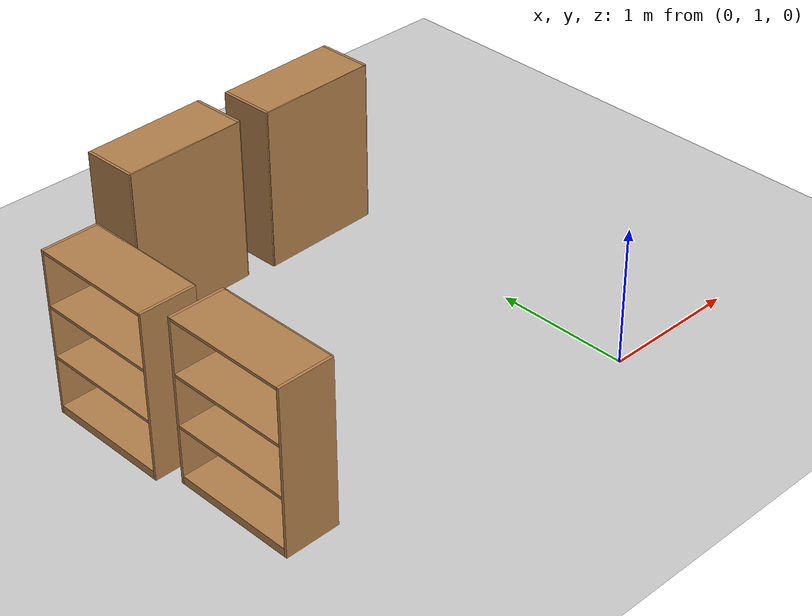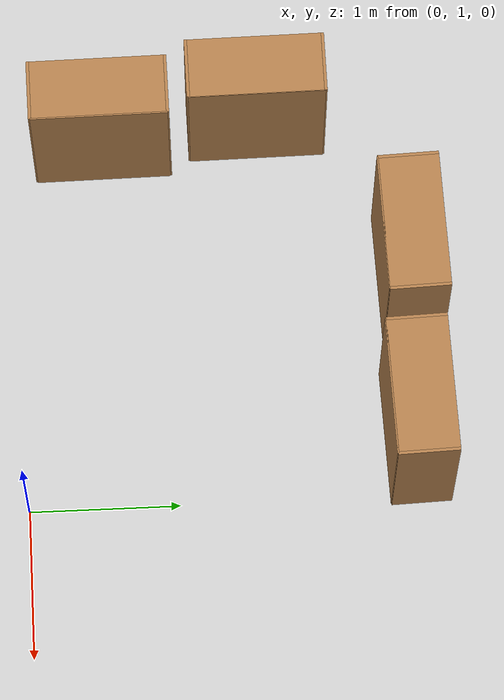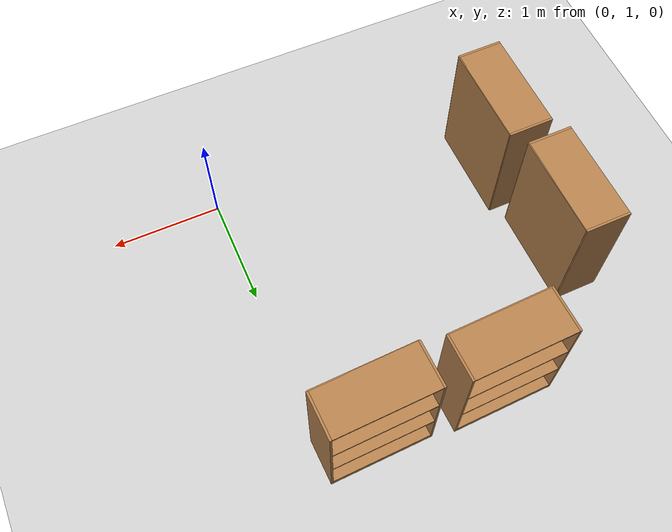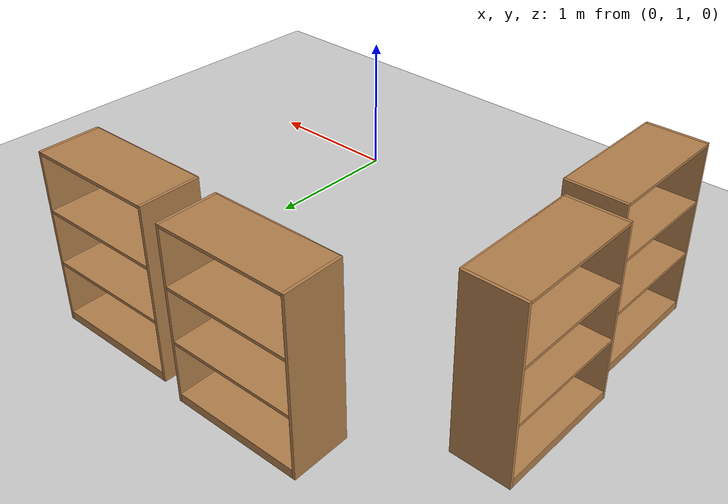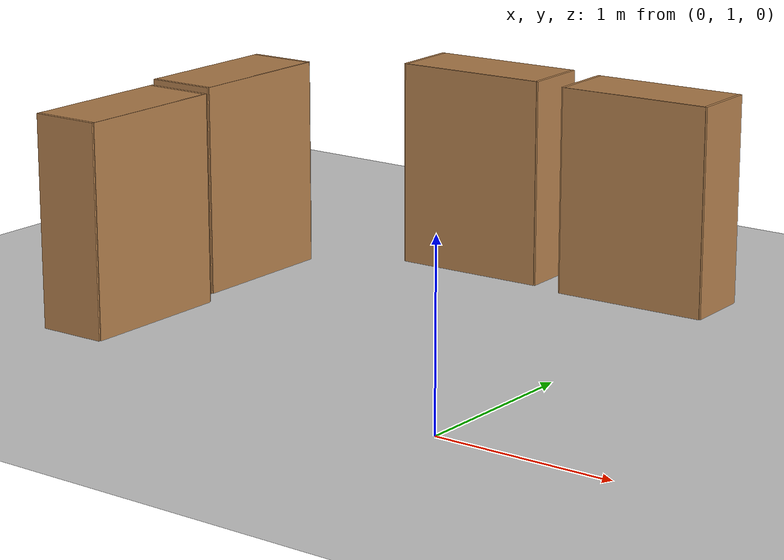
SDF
<sdf version="1.6">
 <world name="default">
  <model name="ground_plane">
   <static>1</static>
   <link name="link">
    <collision name="collision">
     <geometry><plane><normal>0 0 1</normal><size>100 100</size></plane></geometry>
     <surface>
      <contact><collide_bitmask>65535</collide_bitmask></contact>
      <friction><ode><mu>100</mu><mu2>50</mu2></ode></friction>
     </surface>
    </collision>
    <visual name="visual">
     <cast_shadows>0</cast_shadows>
     <geometry><plane><normal>0 0 1</normal><size>100 100</size></plane></geometry>
     <material>
      <script><uri>file://media/materials/scripts/gazebo.material</uri><name>Gazebo/Grey</name></script>
     </material>
    </visual>
   </link>
  </model>
  <model name="bookshelf_clone_2_clone_clone_0_clone_3_clone">
   <static>1</static>
   <link name="link">
    <inertial><mass>1</mass></inertial>
    <collision name="back">
     <pose>0 0.005 0.6 0 -0 0</pose>
     <geometry><box><size>0.9 0.01 1.2</size></box></geometry>
    </collision>
    <visual name="visual1">
     <pose>0 0.005 0.6 0 -0 0</pose>
     <geometry><box><size>0.9 0.01 1.2</size></box></geometry>
     <material>
      <script><uri>file://media/materials/scripts/gazebo.material</uri><name>Gazebo/Wood</name></script>
     </material>
    </visual>
    <collision name="left_side">
     <pose>0.45 -0.195 0.6 0 -0 0</pose>
     <geometry><box><size>0.02 0.4 1.2</size></box></geometry>
    </collision>
    <visual name="visual2">
     <pose>0.45 -0.195 0.6 0 -0 0</pose>
     <geometry><box><size>0.02 0.4 1.2</size></box></geometry>
     <material>
      <script><uri>file://media/materials/scripts/gazebo.material</uri><name>Gazebo/Wood</name></script>
     </material>
    </visual>
    <collision name="right_side">
     <pose>-0.45 -0.195 0.6 0 -0 0</pose>
     <geometry><box><size>0.02 0.4 1.2</size></box></geometry>
    </collision>
    <visual name="visual3">
     <pose>-0.45 -0.195 0.6 0 -0 0</pose>
     <geometry><box><size>0.02 0.4 1.2</size></box></geometry>
     <material>
      <script><uri>file://media/materials/scripts/gazebo.material</uri><name>Gazebo/Wood</name></script>
     </material>
    </visual>
    <collision name="bottom">
     <pose>0 -0.195 0.03 0 -0 0</pose>
     <geometry><box><size>0.88 0.4 0.06</size></box></geometry>
    </collision>
    <visual name="visual4">
     <pose>0 -0.195 0.03 0 -0 0</pose>
     <geometry><box><size>0.88 0.4 0.06</size></box></geometry>
     <material>
      <script><uri>file://media/materials/scripts/gazebo.material</uri><name>Gazebo/Wood</name></script>
     </material>
    </visual>
    <collision name="top">
     <pose>0 -0.195 1.19 0 -0 0</pose>
     <geometry><box><size>0.88 0.4 0.02</size></box></geometry>
    </collision>
    <visual name="visual5">
     <pose>0 -0.195 1.19 0 -0 0</pose>
     <geometry><box><size>0.88 0.4 0.02</size></box></geometry>
     <material>
      <script><uri>file://media/materials/scripts/gazebo.material</uri><name>Gazebo/Wood</name></script>
     </material>
    </visual>
    <collision name="low_shelf">
     <pose>0 -0.195 0.43 0 -0 0</pose>
     <geometry><box><size>0.88 0.4 0.02</size></box></geometry>
    </collision>
    <visual name="visual6">
     <pose>0 -0.195 0.43 0 -0 0</pose>
     <geometry><box><size>0.88 0.4 0.02</size></box></geometry>
     <material>
      <script><uri>file://media/materials/scripts/gazebo.material</uri><name>Gazebo/Wood</name></script>
     </material>
    </visual>
    <collision name="high_shelf">
     <pose>0 -0.195 0.8 0 -0 0</pose>
     <geometry><box><size>0.88 0.4 0.02</size></box></geometry>
    </collision>
    <visual name="visual7">
     <pose>0 -0.195 0.8 0 -0 0</pose>
     <geometry><box><size>0.88 0.4 0.02</size></box></geometry>
     <material>
      <script><uri>file://media/materials/scripts/gazebo.material</uri><name>Gazebo/Wood</name></script>
     </material>
    </visual>
   </link>
   <pose>-0.402698 3.38465 0 0 0 -3.10717</pose>
  </model>
  <model name="bookshelf_clone_2_clone_clone_0_clone_3_clone_0">
   <static>1</static>
   <link name="link">
    <inertial><mass>1</mass></inertial>
    <collision name="back">
     <pose>0 0.005 0.6 0 -0 0</pose>
     <geometry><box><size>0.9 0.01 1.2</size></box></geometry>
    </collision>
    <visual name="visual1">
     <pose>0 0.005 0.6 0 -0 0</pose>
     <geometry><box><size>0.9 0.01 1.2</size></box></geometry>
     <material>
      <script><uri>file://media/materials/scripts/gazebo.material</uri><name>Gazebo/Wood</name></script>
     </material>
    </visual>
    <collision name="left_side">
     <pose>0.45 -0.195 0.6 0 -0 0</pose>
     <geometry><box><size>0.02 0.4 1.2</size></box></geometry>
    </collision>
    <visual name="visual2">
     <pose>0.45 -0.195 0.6 0 -0 0</pose>
     <geometry><box><size>0.02 0.4 1.2</size></box></geometry>
     <material>
      <script><uri>file://media/materials/scripts/gazebo.material</uri><name>Gazebo/Wood</name></script>
     </material>
    </visual>
    <collision name="right_side">
     <pose>-0.45 -0.195 0.6 0 -0 0</pose>
     <geometry><box><size>0.02 0.4 1.2</size></box></geometry>
    </collision>
    <visual name="visual3">
     <pose>-0.45 -0.195 0.6 0 -0 0</pose>
     <geometry><box><size>0.02 0.4 1.2</size></box></geometry>
     <material>
      <script><uri>file://media/materials/scripts/gazebo.material</uri><name>Gazebo/Wood</name></script>
     </material>
    </visual>
    <collision name="bottom">
     <pose>0 -0.195 0.03 0 -0 0</pose>
     <geometry><box><size>0.88 0.4 0.06</size></box></geometry>
    </collision>
    <visual name="visual4">
     <pose>0 -0.195 0.03 0 -0 0</pose>
     <geometry><box><size>0.88 0.4 0.06</size></box></geometry>
     <material>
      <script><uri>file://media/materials/scripts/gazebo.material</uri><name>Gazebo/Wood</name></script>
     </material>
    </visual>
    <collision name="top">
     <pose>0 -0.195 1.19 0 -0 0</pose>
     <geometry><box><size>0.88 0.4 0.02</size></box></geometry>
    </collision>
    <visual name="visual5">
     <pose>0 -0.195 1.19 0 -0 0</pose>
     <geometry><box><size>0.88 0.4 0.02</size></box></geometry>
     <material>
      <script><uri>file://media/materials/scripts/gazebo.material</uri><name>Gazebo/Wood</name></script>
     </material>
    </visual>
    <collision name="low_shelf">
     <pose>0 -0.195 0.43 0 -0 0</pose>
     <geometry><box><size>0.88 0.4 0.02</size></box></geometry>
    </collision>
    <visual name="visual6">
     <pose>0 -0.195 0.43 0 -0 0</pose>
     <geometry><box><size>0.88 0.4 0.02</size></box></geometry>
     <material>
      <script><uri>file://media/materials/scripts/gazebo.material</uri><name>Gazebo/Wood</name></script>
     </material>
    </visual>
    <collision name="high_shelf">
     <pose>0 -0.195 0.8 0 -0 0</pose>
     <geometry><box><size>0.88 0.4 0.02</size></box></geometry>
    </collision>
    <visual name="visual7">
     <pose>0 -0.195 0.8 0 -0 0</pose>
     <geometry><box><size>0.88 0.4 0.02</size></box></geometry>
     <material>
      <script><uri>file://media/materials/scripts/gazebo.material</uri><name>Gazebo/Wood</name></script>
     </material>
    </visual>
   </link>
   <pose>-1.5072 3.3937 0 0 0 -3.10717</pose>
  </model>
  <model name="bookshelf_clone_2_clone_clone_0_clone_3_clone_0_clone_1_clone_clone_clone_2">
   <static>1</static>
   <link name="link">
    <inertial><mass>1</mass></inertial>
    <collision name="back">
     <pose>0 0.005 0.6 0 -0 0</pose>
     <geometry><box><size>0.9 0.01 1.2</size></box></geometry>
    </collision>
    <visual name="visual1">
     <pose>0 0.005 0.6 0 -0 0</pose>
     <geometry><box><size>0.9 0.01 1.2</size></box></geometry>
     <material>
      <script><uri>file://media/materials/scripts/gazebo.material</uri><name>Gazebo/Wood</name></script>
     </material>
    </visual>
    <collision name="left_side">
     <pose>0.45 -0.195 0.6 0 -0 0</pose>
     <geometry><box><size>0.02 0.4 1.2</size></box></geometry>
    </collision>
    <visual name="visual2">
     <pose>0.45 -0.195 0.6 0 -0 0</pose>
     <geometry><box><size>0.02 0.4 1.2</size></box></geometry>
     <material>
      <script><uri>file://media/materials/scripts/gazebo.material</uri><name>Gazebo/Wood</name></script>
     </material>
    </visual>
    <collision name="right_side">
     <pose>-0.45 -0.195 0.6 0 -0 0</pose>
     <geometry><box><size>0.02 0.4 1.2</size></box></geometry>
    </collision>
    <visual name="visual3">
     <pose>-0.45 -0.195 0.6 0 -0 0</pose>
     <geometry><box><size>0.02 0.4 1.2</size></box></geometry>
     <material>
      <script><uri>file://media/materials/scripts/gazebo.material</uri><name>Gazebo/Wood</name></script>
     </material>
    </visual>
    <collision name="bottom">
     <pose>0 -0.195 0.03 0 -0 0</pose>
     <geometry><box><size>0.88 0.4 0.06</size></box></geometry>
    </collision>
    <visual name="visual4">
     <pose>0 -0.195 0.03 0 -0 0</pose>
     <geometry><box><size>0.88 0.4 0.06</size></box></geometry>
     <material>
      <script><uri>file://media/materials/scripts/gazebo.material</uri><name>Gazebo/Wood</name></script>
     </material>
    </visual>
    <collision name="top">
     <pose>0 -0.195 1.19 0 -0 0</pose>
     <geometry><box><size>0.88 0.4 0.02</size></box></geometry>
    </collision>
    <visual name="visual5">
     <pose>0 -0.195 1.19 0 -0 0</pose>
     <geometry><box><size>0.88 0.4 0.02</size></box></geometry>
     <material>
      <script><uri>file://media/materials/scripts/gazebo.material</uri><name>Gazebo/Wood</name></script>
     </material>
    </visual>
    <collision name="low_shelf">
     <pose>0 -0.195 0.43 0 -0 0</pose>
     <geometry><box><size>0.88 0.4 0.02</size></box></geometry>
    </collision>
    <visual name="visual6">
     <pose>0 -0.195 0.43 0 -0 0</pose>
     <geometry><box><size>0.88 0.4 0.02</size></box></geometry>
     <material>
      <script><uri>file://media/materials/scripts/gazebo.material</uri><name>Gazebo/Wood</name></script>
     </material>
    </visual>
    <collision name="high_shelf">
     <pose>0 -0.195 0.8 0 -0 0</pose>
     <geometry><box><size>0.88 0.4 0.02</size></box></geometry>
    </collision>
    <visual name="visual7">
     <pose>0 -0.195 0.8 0 -0 0</pose>
     <geometry><box><size>0.88 0.4 0.02</size></box></geometry>
     <material>
      <script><uri>file://media/materials/scripts/gazebo.material</uri><name>Gazebo/Wood</name></script>
     </material>
    </visual>
   </link>
   <pose>-2.43817 2.61369 0 0 0 -1.56003</pose>
  </model>
  <model name="bookshelf_clone_2_clone_clone_0_clone_3_clone_0_clone_1_clone_clone_clone_3">
   <static>1</static>
   <link name="link">
    <inertial><mass>1</mass></inertial>
    <collision name="back">
     <pose>0 0.005 0.6 0 -0 0</pose>
     <geometry><box><size>0.9 0.01 1.2</size></box></geometry>
    </collision>
    <visual name="visual1">
     <pose>0 0.005 0.6 0 -0 0</pose>
     <geometry><box><size>0.9 0.01 1.2</size></box></geometry>
     <material>
      <script><uri>file://media/materials/scripts/gazebo.material</uri><name>Gazebo/Wood</name></script>
     </material>
    </visual>
    <collision name="left_side">
     <pose>0.45 -0.195 0.6 0 -0 0</pose>
     <geometry><box><size>0.02 0.4 1.2</size></box></geometry>
    </collision>
    <visual name="visual2">
     <pose>0.45 -0.195 0.6 0 -0 0</pose>
     <geometry><box><size>0.02 0.4 1.2</size></box></geometry>
     <material>
      <script><uri>file://media/materials/scripts/gazebo.material</uri><name>Gazebo/Wood</name></script>
     </material>
    </visual>
    <collision name="right_side">
     <pose>-0.45 -0.195 0.6 0 -0 0</pose>
     <geometry><box><size>0.02 0.4 1.2</size></box></geometry>
    </collision>
    <visual name="visual3">
     <pose>-0.45 -0.195 0.6 0 -0 0</pose>
     <geometry><box><size>0.02 0.4 1.2</size></box></geometry>
     <material>
      <script><uri>file://media/materials/scripts/gazebo.material</uri><name>Gazebo/Wood</name></script>
     </material>
    </visual>
    <collision name="bottom">
     <pose>0 -0.195 0.03 0 -0 0</pose>
     <geometry><box><size>0.88 0.4 0.06</size></box></geometry>
    </collision>
    <visual name="visual4">
     <pose>0 -0.195 0.03 0 -0 0</pose>
     <geometry><box><size>0.88 0.4 0.06</size></box></geometry>
     <material>
      <script><uri>file://media/materials/scripts/gazebo.material</uri><name>Gazebo/Wood</name></script>
     </material>
    </visual>
    <collision name="top">
     <pose>0 -0.195 1.19 0 -0 0</pose>
     <geometry><box><size>0.88 0.4 0.02</size></box></geometry>
    </collision>
    <visual name="visual5">
     <pose>0 -0.195 1.19 0 -0 0</pose>
     <geometry><box><size>0.88 0.4 0.02</size></box></geometry>
     <material>
      <script><uri>file://media/materials/scripts/gazebo.material</uri><name>Gazebo/Wood</name></script>
     </material>
    </visual>
    <collision name="low_shelf">
     <pose>0 -0.195 0.43 0 -0 0</pose>
     <geometry><box><size>0.88 0.4 0.02</size></box></geometry>
    </collision>
    <visual name="visual6">
     <pose>0 -0.195 0.43 0 -0 0</pose>
     <geometry><box><size>0.88 0.4 0.02</size></box></geometry>
     <material>
      <script><uri>file://media/materials/scripts/gazebo.material</uri><name>Gazebo/Wood</name></script>
     </material>
    </visual>
    <collision name="high_shelf">
     <pose>0 -0.195 0.8 0 -0 0</pose>
     <geometry><box><size>0.88 0.4 0.02</size></box></geometry>
    </collision>
    <visual name="visual7">
     <pose>0 -0.195 0.8 0 -0 0</pose>
     <geometry><box><size>0.88 0.4 0.02</size></box></geometry>
     <material>
      <script><uri>file://media/materials/scripts/gazebo.material</uri><name>Gazebo/Wood</name></script>
     </material>
    </visual>
   </link>
   <pose>-2.33011 1.57512 0 0 0 -1.56003</pose>
  </model>
 </world>
</sdf>
